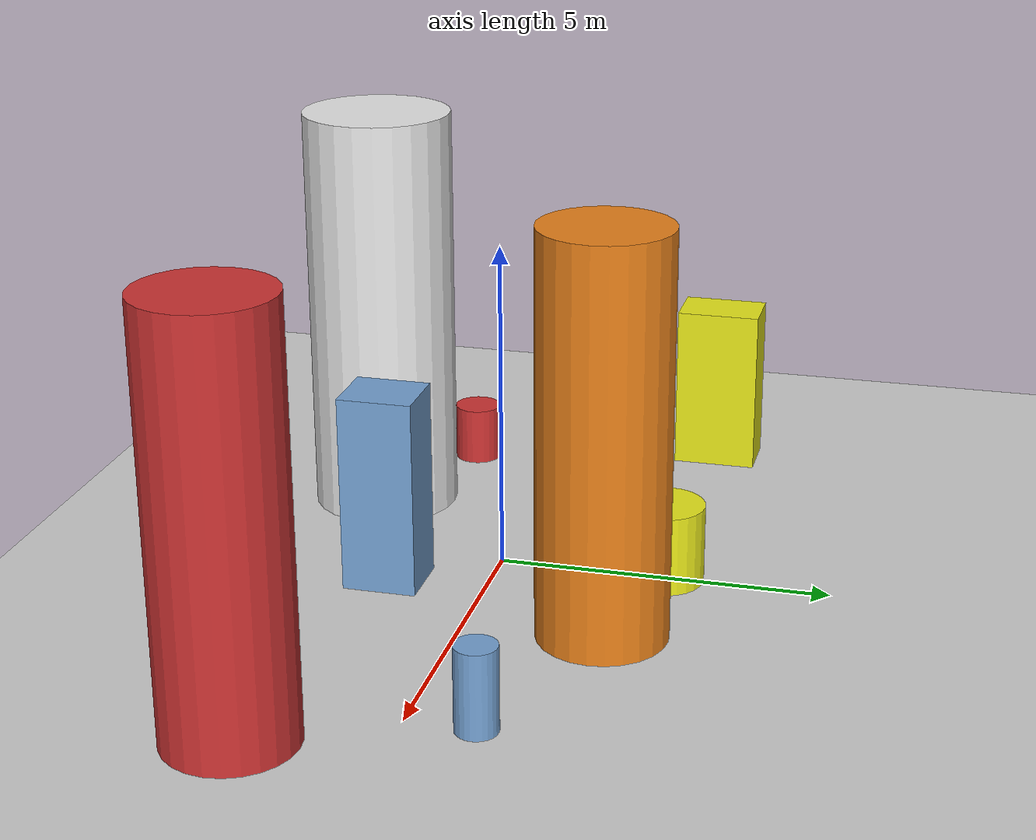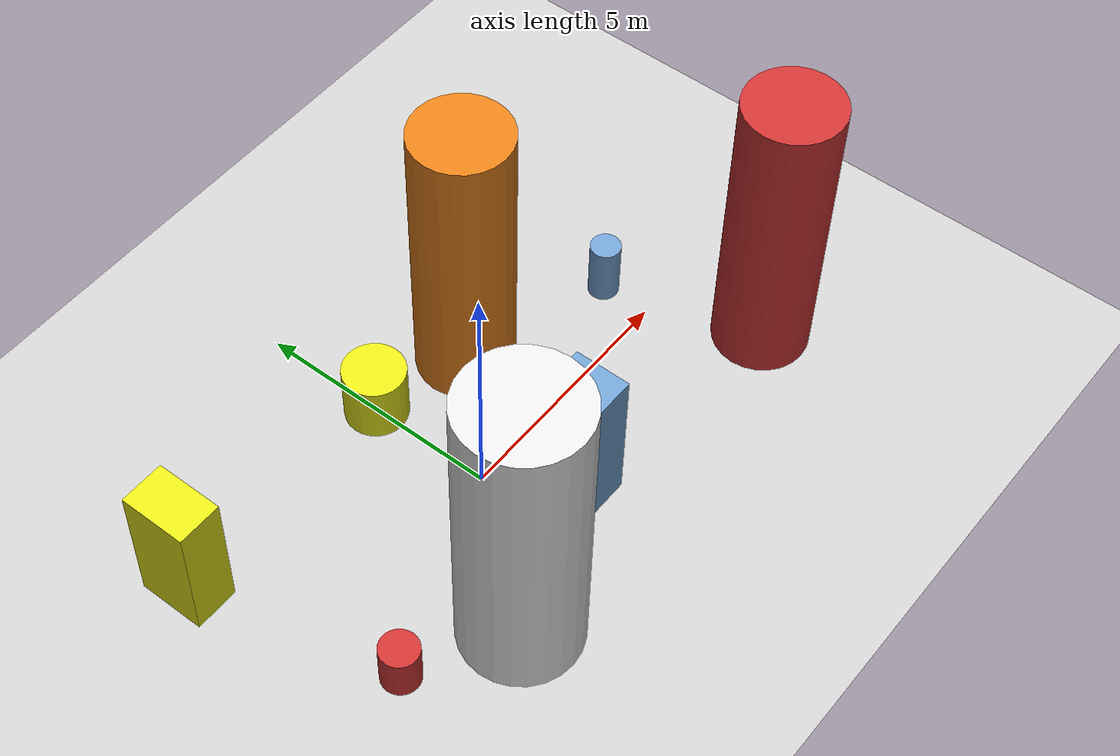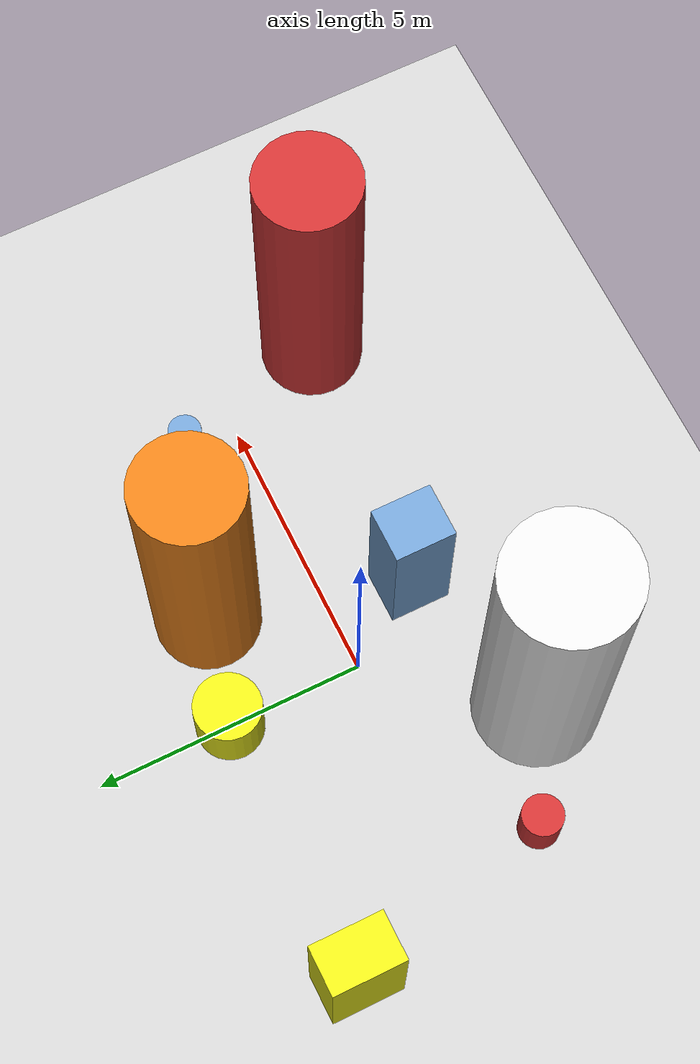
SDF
<?xml version='1.0'?>
<sdf version='1.6'>
  <world name='routeA_rl_v1__support_expansion__rl_train__mixed_3d_low_density_route__000136'>
    <!-- Sun light -->
    <light name='sun' type='directional'>
      <cast_shadows>1</cast_shadows>
      <pose>0 0 10 0 0 0</pose>
      <diffuse>0.8 0.8 0.8 1</diffuse>
      <specular>0.2 0.2 0.2 1</specular>
      <attenuation>
        <range>1000</range>
        <constant>0.9</constant>
        <linear>0.01</linear>
        <quadratic>0.001</quadratic>
      </attenuation>
      <direction>-0.5 0.1 -0.9</direction>
    </light>

    <!-- Ground plane -->
    <model name='ground_plane'>
      <static>1</static>
      <link name='link'>
        <collision name='collision'>
          <geometry>
            <plane>
              <normal>0 0 1</normal>
              <size>100 100</size>
            </plane>
          </geometry>
          <surface>
            <contact>
              <collide_bitmask>65535</collide_bitmask>
              <ode/>
            </contact>
            <friction>
              <ode>
                <mu>100</mu>
                <mu2>50</mu2>
              </ode>
              <torsional><ode/></torsional>
            </friction>
            <bounce/>
          </surface>
          <max_contacts>10</max_contacts>
        </collision>
        <visual name='visual'>
          <cast_shadows>0</cast_shadows>
          <geometry>
            <plane>
              <normal>0 0 1</normal>
              <size>100 100</size>
            </plane>
          </geometry>
          <material>
            <script>
              <uri>file://media/materials/scripts/gazebo.material</uri>
              <n>Gazebo/Grey</n>
            </script>
          </material>
        </visual>
      </link>
    </model>

    <!-- Environment -->
    <magnetic_field>6e-06 2.3e-05 -4.2e-05</magnetic_field>
    <atmosphere type='adiabatic'/>
    <physics name='default_physics' default='0' type='ode'>
      <gravity>0 0 -9.8</gravity>
      <max_step_size>0.004</max_step_size>
      <real_time_factor>1</real_time_factor>
      <real_time_update_rate>250</real_time_update_rate>
    </physics>
    <scene>
      <ambient>0.4 0.4 0.4 1</ambient>
      <background>0.7 0.7 0.7 1</background>
      <shadows>1</shadows>
    </scene>
    <wind/>
    <spherical_coordinates>
      <surface_model>EARTH_WGS84</surface_model>
      <latitude_deg>0</latitude_deg>
      <longitude_deg>0</longitude_deg>
      <elevation>0</elevation>
      <heading_deg>0</heading_deg>
    </spherical_coordinates>

    <!-- ============ OBSTACLES (8) ============ -->
    <model name='low_obs_0'>
      <static>1</static>
      <link name='link'>
        <visual name='visual'>
          <geometry>
            <cylinder>
              <radius>0.3747</radius>
              <length>0.9257</length>
            </cylinder>
          </geometry>
          <material>
            <script>
              <n>Gazebo/Red</n>
              <uri>file://media/materials/scripts/gazebo.material</uri>
            </script>
            <ambient>0.8 0.2 0.2 1</ambient>
          </material>
        </visual>
        <collision name='collision'>
          <geometry>
            <cylinder>
              <radius>0.3747</radius>
              <length>0.9257</length>
            </cylinder>
          </geometry>
          <max_contacts>10</max_contacts>
          <surface>
            <contact><ode/></contact>
            <bounce/>
            <friction>
              <ode><mu>1</mu><mu2>1</mu2></ode>
              <torsional><ode/></torsional>
            </friction>
          </surface>
        </collision>
      </link>
      <pose>-4.0000 -1.5000 0.4628 0 0 0.0000</pose>
    </model>

    <model name='low_obs_1'>
      <static>1</static>
      <link name='link'>
        <visual name='visual'>
          <geometry>
            <cylinder>
              <radius>0.6111</radius>
              <length>1.2202</length>
            </cylinder>
          </geometry>
          <material>
            <script>
              <n>Gazebo/Yellow</n>
              <uri>file://media/materials/scripts/gazebo.material</uri>
            </script>
            <ambient>0.9 0.9 0.1 1</ambient>
          </material>
        </visual>
        <collision name='collision'>
          <geometry>
            <cylinder>
              <radius>0.6111</radius>
              <length>1.2202</length>
            </cylinder>
          </geometry>
          <max_contacts>10</max_contacts>
          <surface>
            <contact><ode/></contact>
            <bounce/>
            <friction>
              <ode><mu>1</mu><mu2>1</mu2></ode>
              <torsional><ode/></torsional>
            </friction>
          </surface>
        </collision>
      </link>
      <pose>0.0000 2.5000 0.6101 0 0 0.0000</pose>
    </model>

    <model name='low_obs_2'>
      <static>1</static>
      <link name='link'>
        <visual name='visual'>
          <geometry>
            <cylinder>
              <radius>0.3025</radius>
              <length>1.2430</length>
            </cylinder>
          </geometry>
          <material>
            <script>
              <n>Gazebo/Blue</n>
              <uri>file://media/materials/scripts/gazebo.material</uri>
            </script>
            <ambient>0.447 0.624 0.812 1</ambient>
          </material>
        </visual>
        <collision name='collision'>
          <geometry>
            <cylinder>
              <radius>0.3025</radius>
              <length>1.2430</length>
            </cylinder>
          </geometry>
          <max_contacts>10</max_contacts>
          <surface>
            <contact><ode/></contact>
            <bounce/>
            <friction>
              <ode><mu>1</mu><mu2>1</mu2></ode>
              <torsional><ode/></torsional>
            </friction>
          </surface>
        </collision>
      </link>
      <pose>5.0000 1.0000 0.6215 0 0 0.0000</pose>
    </model>

    <model name='tall_obs_0'>
      <static>1</static>
      <link name='link'>
        <visual name='visual'>
          <geometry>
            <cylinder>
              <radius>1.1507</radius>
              <length>6.4181</length>
            </cylinder>
          </geometry>
          <material>
            <script>
              <n>Gazebo/White</n>
              <uri>file://media/materials/scripts/gazebo.material</uri>
            </script>
            <ambient>0.9 0.9 0.9 1</ambient>
          </material>
        </visual>
        <collision name='collision'>
          <geometry>
            <cylinder>
              <radius>1.1507</radius>
              <length>6.4181</length>
            </cylinder>
          </geometry>
          <max_contacts>10</max_contacts>
          <surface>
            <contact><ode/></contact>
            <bounce/>
            <friction>
              <ode><mu>1</mu><mu2>1</mu2></ode>
              <torsional><ode/></torsional>
            </friction>
          </surface>
        </collision>
      </link>
      <pose>-2.0000 -2.5000 3.2091 0 0 0.0000</pose>
    </model>

    <model name='tall_obs_1'>
      <static>1</static>
      <link name='link'>
        <visual name='visual'>
          <geometry>
            <cylinder>
              <radius>0.9609</radius>
              <length>6.0251</length>
            </cylinder>
          </geometry>
          <material>
            <script>
              <n>Gazebo/Orange</n>
              <uri>file://media/materials/scripts/gazebo.material</uri>
            </script>
            <ambient>0.9 0.5 0.1 1</ambient>
          </material>
        </visual>
        <collision name='collision'>
          <geometry>
            <cylinder>
              <radius>0.9609</radius>
              <length>6.0251</length>
            </cylinder>
          </geometry>
          <max_contacts>10</max_contacts>
          <surface>
            <contact><ode/></contact>
            <bounce/>
            <friction>
              <ode><mu>1</mu><mu2>1</mu2></ode>
              <torsional><ode/></torsional>
            </friction>
          </surface>
        </collision>
      </link>
      <pose>2.0000 2.0000 3.0125 0 0 0.0000</pose>
    </model>

    <model name='tall_obs_2'>
      <static>1</static>
      <link name='link'>
        <visual name='visual'>
          <geometry>
            <cylinder>
              <radius>0.9427</radius>
              <length>6.0739</length>
            </cylinder>
          </geometry>
          <material>
            <script>
              <n>Gazebo/Red</n>
              <uri>file://media/materials/scripts/gazebo.material</uri>
            </script>
            <ambient>0.8 0.2 0.2 1</ambient>
          </material>
        </visual>
        <collision name='collision'>
          <geometry>
            <cylinder>
              <radius>0.9427</radius>
              <length>6.0739</length>
            </cylinder>
          </geometry>
          <max_contacts>10</max_contacts>
          <surface>
            <contact><ode/></contact>
            <bounce/>
            <friction>
              <ode><mu>1</mu><mu2>1</mu2></ode>
              <torsional><ode/></torsional>
            </friction>
          </surface>
        </collision>
      </link>
      <pose>6.0000 -2.0000 3.0369 0 0 0.0000</pose>
    </model>

    <model name='med_obs_0'>
      <static>1</static>
      <link name='link'>
        <visual name='visual'>
          <geometry>
            <box>
              <size>0.9003 1.3380 2.6610</size>
            </box>
          </geometry>
          <material>
            <script>
              <n>Gazebo/Yellow</n>
              <uri>file://media/materials/scripts/gazebo.material</uri>
            </script>
            <ambient>0.9 0.9 0.1 1</ambient>
          </material>
        </visual>
        <collision name='collision'>
          <geometry>
            <box>
              <size>0.9003 1.3380 2.6610</size>
            </box>
          </geometry>
          <max_contacts>10</max_contacts>
          <surface>
            <contact><ode/></contact>
            <bounce/>
            <friction>
              <ode><mu>1</mu><mu2>1</mu2></ode>
              <torsional><ode/></torsional>
            </friction>
          </surface>
        </collision>
      </link>
      <pose>-5.0000 2.5000 1.3305 0 0 0.0000</pose>
    </model>

    <model name='med_obs_1'>
      <static>1</static>
      <link name='link'>
        <visual name='visual'>
          <geometry>
            <box>
              <size>0.9786 1.1157 3.0033</size>
            </box>
          </geometry>
          <material>
            <script>
              <n>Gazebo/Blue</n>
              <uri>file://media/materials/scripts/gazebo.material</uri>
            </script>
            <ambient>0.447 0.624 0.812 1</ambient>
          </material>
        </visual>
        <collision name='collision'>
          <geometry>
            <box>
              <size>0.9786 1.1157 3.0033</size>
            </box>
          </geometry>
          <max_contacts>10</max_contacts>
          <surface>
            <contact><ode/></contact>
            <bounce/>
            <friction>
              <ode><mu>1</mu><mu2>1</mu2></ode>
              <torsional><ode/></torsional>
            </friction>
          </surface>
        </collision>
      </link>
      <pose>1.0000 -1.5000 1.5016 0 0 0.0000</pose>
    </model>

    <!-- GUI camera -->
    <gui fullscreen='0'>
      <camera name='user_camera'>
        <pose>-15 0 18 0 0.85 0.15</pose>
        <view_controller>orbit</view_controller>
        <projection_type>perspective</projection_type>
      </camera>
    </gui>
  </world>
</sdf>
